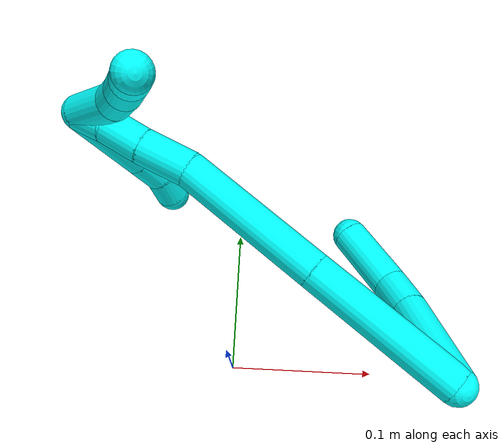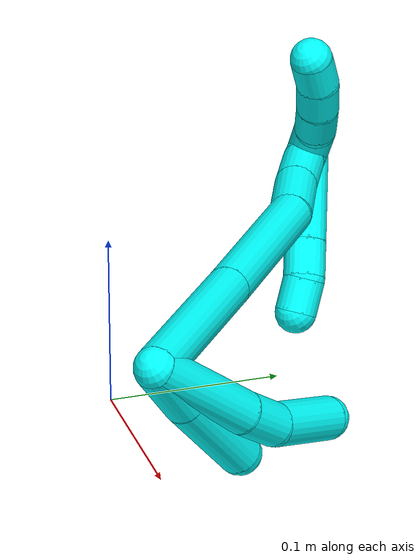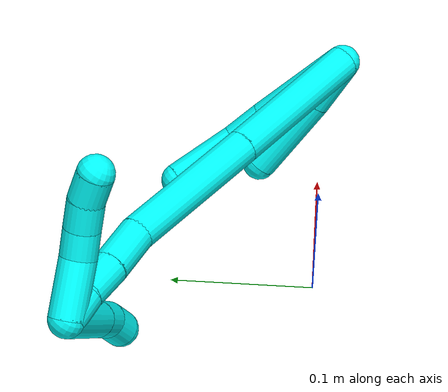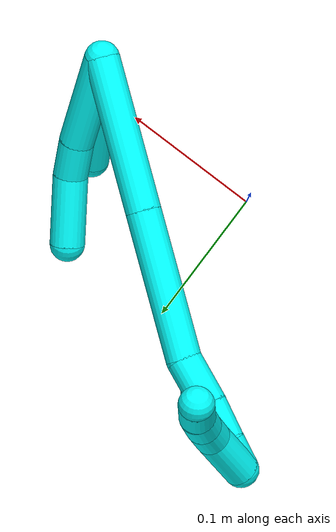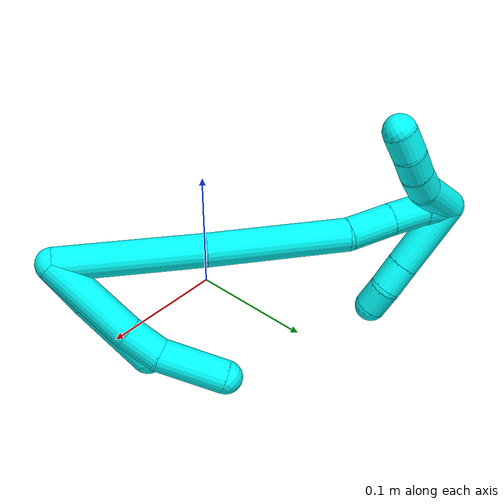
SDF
<sdf version="1.7">
 <world name="default">
  <model name="photoneo_s_sensor">
   <static>1</static>
   <pose>0 0 2 1.57079 1.57079 3.14159</pose>
   <link name="link">
    <inertial><mass>0.1</mass></inertial>
    <sensor name="sensor" type="depth">
     <update_rate>30</update_rate>
     <camera>
      <horizontal_fov>1.22</horizontal_fov>
      <image><width>1920</width><height>1200</height><format>B8G8R8</format></image>
      <clip><near>0.1</near><far>4</far></clip>
      <depth_camera><output>points</output></depth_camera>
     </camera>
     <plugin name="camera_plugin" filename="libgazebo_ros_depth_camera.so">
      <baseline>0.2</baseline>
      <alwaysOn>1</alwaysOn>
      <updateRate>0.0</updateRate>
      <cameraName>camera_ir</cameraName>
      <imageTopicName>/camera/color/image_raw</imageTopicName>
      <cameraInfoTopicName>/camera/color/camera_info</cameraInfoTopicName>
      <depthImageTopicName>/camera/depth/image_raw</depthImageTopicName>
      <depthImageCameraInfoTopicName>/camera/depth/camera_info</depthImageCameraInfoTopicName>
      <pointCloudTopicName>/camera/depth/points</pointCloudTopicName>
      <frameName>fr_optical</frameName>
      <pointCloudCutoff>0.1</pointCloudCutoff>
      <pointCloudCutoffMax>2.0</pointCloudCutoffMax>
      <distortionK1>0</distortionK1>
      <distortionK2>0</distortionK2>
      <distortionK3>0</distortionK3>
      <distortionT1>0</distortionT1>
      <distortionT2>0</distortionT2>
      <CxPrime>0</CxPrime>
      <Cx>0</Cx>
      <Cy>0</Cy>
      <focalLength>0</focalLength>
      <hackBaseline>0</hackBaseline>
     </plugin>
    </sensor>
   </link>
  </model>
  <model name="bin">
   <static>1</static>
   <link name="bottom">
    <collision name="collision-bottom">
     <pose>0 0 -0.01 0 -0 0</pose>
     <geometry><box><size>0.8 0.6 0.02</size></box></geometry>
     <surface>
      <friction><ode><mu>100</mu><mu2>100</mu2></ode></friction>
      <contact><collide_bitmask>65535</collide_bitmask></contact>
     </surface>
    </collision>
   </link>
   <link name="west_wall">
    <collision name="collision-west_wall">
     <pose>-0.41 0 0.1 0 -0 0</pose>
     <geometry><box><size>0.02 0.6 0.2</size></box></geometry>
     <surface>
      <friction><ode><mu>100</mu><mu2>100</mu2></ode></friction>
      <contact><collide_bitmask>65535</collide_bitmask></contact>
     </surface>
    </collision>
   </link>
   <link name="east_wall">
    <collision name="collision-east_wall">
     <pose>0.41 0 0.1 0 -0 0</pose>
     <geometry><box><size>0.02 0.6 0.2</size></box></geometry>
     <surface>
      <friction><ode><mu>100</mu><mu2>100</mu2></ode></friction>
      <contact><collide_bitmask>65535</collide_bitmask></contact>
     </surface>
    </collision>
   </link>
   <link name="south_wall">
    <collision name="collision-south_wall">
     <pose>0 -0.31 0.1 0 -0 0</pose>
     <geometry><box><size>0.8 0.02 0.2</size></box></geometry>
     <surface>
      <friction><ode><mu>100</mu><mu2>100</mu2></ode></friction>
      <contact><collide_bitmask>65535</collide_bitmask></contact>
     </surface>
    </collision>
   </link>
   <link name="north_wall">
    <collision name="collision-north_wall">
     <pose>0 0.31 0.1 0 -0 0</pose>
     <geometry><box><size>0.8 0.02 0.2</size></box></geometry>
     <surface>
      <friction><ode><mu>100</mu><mu2>100</mu2></ode></friction>
      <contact><collide_bitmask>65535</collide_bitmask></contact>
     </surface>
    </collision>
   </link>
  </model>
  <model name="3">
   <static>0</static>
   <link name="3">
    <collision name="collision-cylinder-e_1_2_8">
     <pose>-0.009427 -0.004873 0.034077 0.14205 -0.267304 -0.019131</pose>
     <geometry><cylinder><radius>0.0125</radius><length>0.071383</length></cylinder></geometry>
     <surface>
      <friction><ode><mu>1.16</mu><mu2>1.16</mu2><slip1>0</slip1><slip2>0</slip2></ode></friction>
      <contact><ode><kp>1e+06</kp><kd>1</kd><max_vel>0</max_vel><min_depth>0.001</min_depth></ode></contact>
     </surface>
    </collision>
    <visual name="visual-cylinder-e_1_2_8">
     <pose>-0.009427 -0.004873 0.034077 0.14205 -0.267304 -0.019131</pose>
     <geometry><cylinder><radius>0.0125</radius><length>0.071383</length></cylinder></geometry>
     <material><ambient>0.003922 1 0.996078 1</ambient></material>
    </visual>
    <collision name="collision-cylinder-e_2_8_9">
     <pose>-0.023315 -0.010203 0.081361 0.034483 -0.325508 -0.005663</pose>
     <geometry><cylinder><radius>0.0125</radius><length>0.027894</length></cylinder></geometry>
     <surface>
      <friction><ode><mu>1.16</mu><mu2>1.16</mu2><slip1>0</slip1><slip2>0</slip2></ode></friction>
      <contact><ode><kp>1e+06</kp><kd>1</kd><max_vel>0</max_vel><min_depth>0.001</min_depth></ode></contact>
     </surface>
    </collision>
    <visual name="visual-cylinder-e_2_8_9">
     <pose>-0.023315 -0.010203 0.081361 0.034483 -0.325508 -0.005663</pose>
     <geometry><cylinder><radius>0.0125</radius><length>0.027894</length></cylinder></geometry>
     <material><ambient>0.003922 1 0.996078 1</ambient></material>
    </visual>
    <collision name="collision-cylinder-e_3_9_6">
     <pose>-0.041649 -0.007168 0.115509 -0.165145 -0.578832 0.049279</pose>
     <geometry><cylinder><radius>0.0125</radius><length>0.050723</length></cylinder></geometry>
     <surface>
      <friction><ode><mu>1.16</mu><mu2>1.16</mu2><slip1>0</slip1><slip2>0</slip2></ode></friction>
      <contact><ode><kp>1e+06</kp><kd>1</kd><max_vel>0</max_vel><min_depth>0.001</min_depth></ode></contact>
     </surface>
    </collision>
    <visual name="visual-cylinder-e_3_9_6">
     <pose>-0.041649 -0.007168 0.115509 -0.165145 -0.578832 0.049279</pose>
     <geometry><cylinder><radius>0.0125</radius><length>0.050723</length></cylinder></geometry>
     <material><ambient>0.003922 1 0.996078 1</ambient></material>
    </visual>
    <collision name="collision-cylinder-e_1_2_10">
     <pose>2.4e-05 -8.8e-05 0.018456 0.004761 0.001289 3e-06</pose>
     <geometry><cylinder><radius>0.0125</radius><length>0.036913</length></cylinder></geometry>
     <surface>
      <friction><ode><mu>1.16</mu><mu2>1.16</mu2><slip1>0</slip1><slip2>0</slip2></ode></friction>
      <contact><ode><kp>1e+06</kp><kd>1</kd><max_vel>0</max_vel><min_depth>0.001</min_depth></ode></contact>
     </surface>
    </collision>
    <visual name="visual-cylinder-e_1_2_10">
     <pose>2.4e-05 -8.8e-05 0.018456 0.004761 0.001289 3e-06</pose>
     <geometry><cylinder><radius>0.0125</radius><length>0.036913</length></cylinder></geometry>
     <material><ambient>0.003922 1 0.996078 1</ambient></material>
    </visual>
    <collision name="collision-cylinder-e_2_10_5">
     <pose>-0.002486 -0.000543 0.068352 0.01168 -0.080417 -0.00047</pose>
     <geometry><cylinder><radius>0.0125</radius><length>0.063087</length></cylinder></geometry>
     <surface>
      <friction><ode><mu>1.16</mu><mu2>1.16</mu2><slip1>0</slip1><slip2>0</slip2></ode></friction>
      <contact><ode><kp>1e+06</kp><kd>1</kd><max_vel>0</max_vel><min_depth>0.001</min_depth></ode></contact>
     </surface>
    </collision>
    <visual name="visual-cylinder-e_2_10_5">
     <pose>-0.002486 -0.000543 0.068352 0.01168 -0.080417 -0.00047</pose>
     <geometry><cylinder><radius>0.0125</radius><length>0.063087</length></cylinder></geometry>
     <material><ambient>0.003922 1 0.996078 1</ambient></material>
    </visual>
    <collision name="collision-cylinder-e_1_2_11">
     <pose>-0.03594 0.025782 0.031885 -0.679946 -0.719677 0.264587</pose>
     <geometry><cylinder><radius>0.0125</radius><length>0.109051</length></cylinder></geometry>
     <surface>
      <friction><ode><mu>1.16</mu><mu2>1.16</mu2><slip1>0</slip1><slip2>0</slip2></ode></friction>
      <contact><ode><kp>1e+06</kp><kd>1</kd><max_vel>0</max_vel><min_depth>0.001</min_depth></ode></contact>
     </surface>
    </collision>
    <visual name="visual-cylinder-e_1_2_11">
     <pose>-0.03594 0.025782 0.031885 -0.679946 -0.719677 0.264587</pose>
     <geometry><cylinder><radius>0.0125</radius><length>0.109051</length></cylinder></geometry>
     <material><ambient>0.003922 1 0.996078 1</ambient></material>
    </visual>
    <collision name="collision-cylinder-e_2_11_12">
     <pose>-0.107335 0.076719 0.093819 -0.697001 -0.735431 0.278129</pose>
     <geometry><cylinder><radius>0.0125</radius><length>0.105693</length></cylinder></geometry>
     <surface>
      <friction><ode><mu>1.16</mu><mu2>1.16</mu2><slip1>0</slip1><slip2>0</slip2></ode></friction>
      <contact><ode><kp>1e+06</kp><kd>1</kd><max_vel>0</max_vel><min_depth>0.001</min_depth></ode></contact>
     </surface>
    </collision>
    <visual name="visual-cylinder-e_2_11_12">
     <pose>-0.107335 0.076719 0.093819 -0.697001 -0.735431 0.278129</pose>
     <geometry><cylinder><radius>0.0125</radius><length>0.105693</length></cylinder></geometry>
     <material><ambient>0.003922 1 0.996078 1</ambient></material>
    </visual>
    <collision name="collision-cylinder-e_3_12_13">
     <pose>-0.15331 0.113945 0.131477 -1.00828 -0.635263 0.358848</pose>
     <geometry><cylinder><radius>0.0125</radius><length>0.035456</length></cylinder></geometry>
     <surface>
      <friction><ode><mu>1.16</mu><mu2>1.16</mu2><slip1>0</slip1><slip2>0</slip2></ode></friction>
      <contact><ode><kp>1e+06</kp><kd>1</kd><max_vel>0</max_vel><min_depth>0.001</min_depth></ode></contact>
     </surface>
    </collision>
    <visual name="visual-cylinder-e_3_12_13">
     <pose>-0.15331 0.113945 0.131477 -1.00828 -0.635263 0.358848</pose>
     <geometry><cylinder><radius>0.0125</radius><length>0.035456</length></cylinder></geometry>
     <material><ambient>0.003922 1 0.996078 1</ambient></material>
    </visual>
    <collision name="collision-cylinder-e_4_13_14">
     <pose>-0.172792 0.134772 0.145131 -0.966724 -0.700032 0.37863</pose>
     <geometry><cylinder><radius>0.0125</radius><length>0.027823</length></cylinder></geometry>
     <surface>
      <friction><ode><mu>1.16</mu><mu2>1.16</mu2><slip1>0</slip1><slip2>0</slip2></ode></friction>
      <contact><ode><kp>1e+06</kp><kd>1</kd><max_vel>0</max_vel><min_depth>0.001</min_depth></ode></contact>
     </surface>
    </collision>
    <visual name="visual-cylinder-e_4_13_14">
     <pose>-0.172792 0.134772 0.145131 -0.966724 -0.700032 0.37863</pose>
     <geometry><cylinder><radius>0.0125</radius><length>0.027823</length></cylinder></geometry>
     <material><ambient>0.003922 1 0.996078 1</ambient></material>
    </visual>
    <collision name="collision-cylinder-e_5_14_1">
     <pose>-0.187124 0.150429 0.15783 -0.803386 -0.510533 0.220805</pose>
     <geometry><cylinder><radius>0.0125</radius><length>0.021977</length></cylinder></geometry>
     <surface>
      <friction><ode><mu>1.16</mu><mu2>1.16</mu2><slip1>0</slip1><slip2>0</slip2></ode></friction>
      <contact><ode><kp>1e+06</kp><kd>1</kd><max_vel>0</max_vel><min_depth>0.001</min_depth></ode></contact>
     </surface>
    </collision>
    <visual name="visual-cylinder-e_5_14_1">
     <pose>-0.187124 0.150429 0.15783 -0.803386 -0.510533 0.220805</pose>
     <geometry><cylinder><radius>0.0125</radius><length>0.021977</length></cylinder></geometry>
     <material><ambient>0.003922 1 0.996078 1</ambient></material>
    </visual>
    <collision name="collision-cylinder-e_1_1_15">
     <pose>-0.19478 0.14655 0.147894 2.56546 -0.115063 -0.383961</pose>
     <geometry><cylinder><radius>0.0125</radius><length>0.039836</length></cylinder></geometry>
     <surface>
      <friction><ode><mu>1.16</mu><mu2>1.16</mu2><slip1>0</slip1><slip2>0</slip2></ode></friction>
      <contact><ode><kp>1e+06</kp><kd>1</kd><max_vel>0</max_vel><min_depth>0.001</min_depth></ode></contact>
     </surface>
    </collision>
    <visual name="visual-cylinder-e_1_1_15">
     <pose>-0.19478 0.14655 0.147894 2.56546 -0.115063 -0.383961</pose>
     <geometry><cylinder><radius>0.0125</radius><length>0.039836</length></cylinder></geometry>
     <material><ambient>0.003922 1 0.996078 1</ambient></material>
    </visual>
    <collision name="collision-cylinder-e_2_15_16">
     <pose>-0.200164 0.132602 0.122311 2.8027 -0.314139 -1.49367</pose>
     <geometry><cylinder><radius>0.0125</radius><length>0.020046</length></cylinder></geometry>
     <surface>
      <friction><ode><mu>1.16</mu><mu2>1.16</mu2><slip1>0</slip1><slip2>0</slip2></ode></friction>
      <contact><ode><kp>1e+06</kp><kd>1</kd><max_vel>0</max_vel><min_depth>0.001</min_depth></ode></contact>
     </surface>
    </collision>
    <visual name="visual-cylinder-e_2_15_16">
     <pose>-0.200164 0.132602 0.122311 2.8027 -0.314139 -1.49367</pose>
     <geometry><cylinder><radius>0.0125</radius><length>0.020046</length></cylinder></geometry>
     <material><ambient>0.003922 1 0.996078 1</ambient></material>
    </visual>
    <collision name="collision-cylinder-e_3_16_17">
     <pose>-0.206755 0.127422 0.104132 2.92613 -0.355627 -2.0581</pose>
     <geometry><cylinder><radius>0.0125</radius><length>0.020069</length></cylinder></geometry>
     <surface>
      <friction><ode><mu>1.16</mu><mu2>1.16</mu2><slip1>0</slip1><slip2>0</slip2></ode></friction>
      <contact><ode><kp>1e+06</kp><kd>1</kd><max_vel>0</max_vel><min_depth>0.001</min_depth></ode></contact>
     </surface>
    </collision>
    <visual name="visual-cylinder-e_3_16_17">
     <pose>-0.206755 0.127422 0.104132 2.92613 -0.355627 -2.0581</pose>
     <geometry><cylinder><radius>0.0125</radius><length>0.020069</length></cylinder></geometry>
     <material><ambient>0.003922 1 0.996078 1</ambient></material>
    </visual>
    <collision name="collision-cylinder-e_4_17_4">
     <pose>-0.212695 0.124953 0.085232 3.09452 -0.246584 -2.76611</pose>
     <geometry><cylinder><radius>0.0125</radius><length>0.020049</length></cylinder></geometry>
     <surface>
      <friction><ode><mu>1.16</mu><mu2>1.16</mu2><slip1>0</slip1><slip2>0</slip2></ode></friction>
      <contact><ode><kp>1e+06</kp><kd>1</kd><max_vel>0</max_vel><min_depth>0.001</min_depth></ode></contact>
     </surface>
    </collision>
    <visual name="visual-cylinder-e_4_17_4">
     <pose>-0.212695 0.124953 0.085232 3.09452 -0.246584 -2.76611</pose>
     <geometry><cylinder><radius>0.0125</radius><length>0.020049</length></cylinder></geometry>
     <material><ambient>0.003922 1 0.996078 1</ambient></material>
    </visual>
    <collision name="collision-cylinder-e_1_1_18">
     <pose>-0.170034 0.142023 0.172819 1.07228 0.910881 0.56641</pose>
     <geometry><cylinder><radius>0.0125</radius><length>0.056855</length></cylinder></geometry>
     <surface>
      <friction><ode><mu>1.16</mu><mu2>1.16</mu2><slip1>0</slip1><slip2>0</slip2></ode></friction>
      <contact><ode><kp>1e+06</kp><kd>1</kd><max_vel>0</max_vel><min_depth>0.001</min_depth></ode></contact>
     </surface>
    </collision>
    <visual name="visual-cylinder-e_1_1_18">
     <pose>-0.170034 0.142023 0.172819 1.07228 0.910881 0.56641</pose>
     <geometry><cylinder><radius>0.0125</radius><length>0.056855</length></cylinder></geometry>
     <material><ambient>0.003922 1 0.996078 1</ambient></material>
    </visual>
    <collision name="collision-cylinder-e_2_18_19">
     <pose>-0.138709 0.120755 0.18458 1.04877 0.911082 0.552246</pose>
     <geometry><cylinder><radius>0.0125</radius><length>0.022441</length></cylinder></geometry>
     <surface>
      <friction><ode><mu>1.16</mu><mu2>1.16</mu2><slip1>0</slip1><slip2>0</slip2></ode></friction>
      <contact><ode><kp>1e+06</kp><kd>1</kd><max_vel>0</max_vel><min_depth>0.001</min_depth></ode></contact>
     </surface>
    </collision>
    <visual name="visual-cylinder-e_2_18_19">
     <pose>-0.138709 0.120755 0.18458 1.04877 0.911082 0.552246</pose>
     <geometry><cylinder><radius>0.0125</radius><length>0.022441</length></cylinder></geometry>
     <material><ambient>0.003922 1 0.996078 1</ambient></material>
    </visual>
    <collision name="collision-cylinder-e_3_19_3">
     <pose>-0.120689 0.112307 0.192154 0.540514 1.08499 0.330954</pose>
     <geometry><cylinder><radius>0.0125</radius><length>0.020704</length></cylinder></geometry>
     <surface>
      <friction><ode><mu>1.16</mu><mu2>1.16</mu2><slip1>0</slip1><slip2>0</slip2></ode></friction>
      <contact><ode><kp>1e+06</kp><kd>1</kd><max_vel>0</max_vel><min_depth>0.001</min_depth></ode></contact>
     </surface>
    </collision>
    <visual name="visual-cylinder-e_3_19_3">
     <pose>-0.120689 0.112307 0.192154 0.540514 1.08499 0.330954</pose>
     <geometry><cylinder><radius>0.0125</radius><length>0.020704</length></cylinder></geometry>
     <material><ambient>0.003922 1 0.996078 1</ambient></material>
    </visual>
    <collision name="collision-sphere-3">
     <pose>-0.111534 0.10982 0.196298 0 -0 0</pose>
     <geometry><sphere><radius>0.0125</radius></sphere></geometry>
     <surface>
      <friction><ode><mu>1.16</mu><mu2>1.16</mu2><slip1>0</slip1><slip2>0</slip2></ode></friction>
      <contact><ode><kp>1e+06</kp><kd>1</kd><max_vel>0</max_vel><min_depth>0.001</min_depth></ode></contact>
     </surface>
    </collision>
    <visual name="visual-sphere-3">
     <pose>-0.111534 0.10982 0.196298 0 -0 0</pose>
     <geometry><sphere><radius>0.0125</radius></sphere></geometry>
     <material><ambient>0.003922 1 0.996078 1</ambient></material>
    </visual>
    <collision name="collision-sphere-19">
     <pose>-0.129843 0.114794 0.188009 0 -0 0</pose>
     <geometry><sphere><radius>0.0125</radius></sphere></geometry>
     <surface>
      <friction><ode><mu>1.16</mu><mu2>1.16</mu2><slip1>0</slip1><slip2>0</slip2></ode></friction>
      <contact><ode><kp>1e+06</kp><kd>1</kd><max_vel>0</max_vel><min_depth>0.001</min_depth></ode></contact>
     </surface>
    </collision>
    <visual name="visual-sphere-19">
     <pose>-0.129843 0.114794 0.188009 0 -0 0</pose>
     <geometry><sphere><radius>0.0125</radius></sphere></geometry>
     <material><ambient>0.003922 1 0.996078 1</ambient></material>
    </visual>
    <collision name="collision-sphere-5">
     <pose>-0.00502 -0.00091 0.099791 0 -0 0</pose>
     <geometry><sphere><radius>0.0125</radius></sphere></geometry>
     <surface>
      <friction><ode><mu>1.16</mu><mu2>1.16</mu2><slip1>0</slip1><slip2>0</slip2></ode></friction>
      <contact><ode><kp>1e+06</kp><kd>1</kd><max_vel>0</max_vel><min_depth>0.001</min_depth></ode></contact>
     </surface>
    </collision>
    <visual name="visual-sphere-5">
     <pose>-0.00502 -0.00091 0.099791 0 -0 0</pose>
     <geometry><sphere><radius>0.0125</radius></sphere></geometry>
     <material><ambient>0.003922 1 0.996078 1</ambient></material>
    </visual>
    <collision name="collision-sphere-10">
     <pose>4.8e-05 -0.000176 0.036913 0 -0 0</pose>
     <geometry><sphere><radius>0.0125</radius></sphere></geometry>
     <surface>
      <friction><ode><mu>1.16</mu><mu2>1.16</mu2><slip1>0</slip1><slip2>0</slip2></ode></friction>
      <contact><ode><kp>1e+06</kp><kd>1</kd><max_vel>0</max_vel><min_depth>0.001</min_depth></ode></contact>
     </surface>
    </collision>
    <visual name="visual-sphere-10">
     <pose>4.8e-05 -0.000176 0.036913 0 -0 0</pose>
     <geometry><sphere><radius>0.0125</radius></sphere></geometry>
     <material><ambient>0.003922 1 0.996078 1</ambient></material>
    </visual>
    <collision name="collision-sphere-6">
     <pose>-0.055523 -0.003678 0.136451 0 -0 0</pose>
     <geometry><sphere><radius>0.0125</radius></sphere></geometry>
     <surface>
      <friction><ode><mu>1.16</mu><mu2>1.16</mu2><slip1>0</slip1><slip2>0</slip2></ode></friction>
      <contact><ode><kp>1e+06</kp><kd>1</kd><max_vel>0</max_vel><min_depth>0.001</min_depth></ode></contact>
     </surface>
    </collision>
    <visual name="visual-sphere-6">
     <pose>-0.055523 -0.003678 0.136451 0 -0 0</pose>
     <geometry><sphere><radius>0.0125</radius></sphere></geometry>
     <material><ambient>0.003922 1 0.996078 1</ambient></material>
    </visual>
    <collision name="collision-sphere-9">
     <pose>-0.027775 -0.010658 0.094568 0 -0 0</pose>
     <geometry><sphere><radius>0.0125</radius></sphere></geometry>
     <surface>
      <friction><ode><mu>1.16</mu><mu2>1.16</mu2><slip1>0</slip1><slip2>0</slip2></ode></friction>
      <contact><ode><kp>1e+06</kp><kd>1</kd><max_vel>0</max_vel><min_depth>0.001</min_depth></ode></contact>
     </surface>
    </collision>
    <visual name="visual-sphere-9">
     <pose>-0.027775 -0.010658 0.094568 0 -0 0</pose>
     <geometry><sphere><radius>0.0125</radius></sphere></geometry>
     <material><ambient>0.003922 1 0.996078 1</ambient></material>
    </visual>
    <collision name="collision-sphere-2">
     <geometry><sphere><radius>0.0125</radius></sphere></geometry>
     <surface>
      <friction><ode><mu>1.16</mu><mu2>1.16</mu2><slip1>0</slip1><slip2>0</slip2></ode></friction>
      <contact><ode><kp>1e+06</kp><kd>1</kd><max_vel>0</max_vel><min_depth>0.001</min_depth></ode></contact>
     </surface>
    </collision>
    <visual name="visual-sphere-2">
     <geometry><sphere><radius>0.0125</radius></sphere></geometry>
     <material><ambient>0.003922 1 0.996078 1</ambient></material>
    </visual>
    <collision name="collision-sphere-8">
     <pose>-0.018854 -0.009747 0.068154 0 -0 0</pose>
     <geometry><sphere><radius>0.0125</radius></sphere></geometry>
     <surface>
      <friction><ode><mu>1.16</mu><mu2>1.16</mu2><slip1>0</slip1><slip2>0</slip2></ode></friction>
      <contact><ode><kp>1e+06</kp><kd>1</kd><max_vel>0</max_vel><min_depth>0.001</min_depth></ode></contact>
     </surface>
    </collision>
    <visual name="visual-sphere-8">
     <pose>-0.018854 -0.009747 0.068154 0 -0 0</pose>
     <geometry><sphere><radius>0.0125</radius></sphere></geometry>
     <material><ambient>0.003922 1 0.996078 1</ambient></material>
    </visual>
    <collision name="collision-sphere-11">
     <pose>-0.07188 0.051563 0.063771 0 -0 0</pose>
     <geometry><sphere><radius>0.0125</radius></sphere></geometry>
     <surface>
      <friction><ode><mu>1.16</mu><mu2>1.16</mu2><slip1>0</slip1><slip2>0</slip2></ode></friction>
      <contact><ode><kp>1e+06</kp><kd>1</kd><max_vel>0</max_vel><min_depth>0.001</min_depth></ode></contact>
     </surface>
    </collision>
    <visual name="visual-sphere-11">
     <pose>-0.07188 0.051563 0.063771 0 -0 0</pose>
     <geometry><sphere><radius>0.0125</radius></sphere></geometry>
     <material><ambient>0.003922 1 0.996078 1</ambient></material>
    </visual>
    <collision name="collision-sphere-12">
     <pose>-0.14279 0.101874 0.123867 0 -0 0</pose>
     <geometry><sphere><radius>0.0125</radius></sphere></geometry>
     <surface>
      <friction><ode><mu>1.16</mu><mu2>1.16</mu2><slip1>0</slip1><slip2>0</slip2></ode></friction>
      <contact><ode><kp>1e+06</kp><kd>1</kd><max_vel>0</max_vel><min_depth>0.001</min_depth></ode></contact>
     </surface>
    </collision>
    <visual name="visual-sphere-12">
     <pose>-0.14279 0.101874 0.123867 0 -0 0</pose>
     <geometry><sphere><radius>0.0125</radius></sphere></geometry>
     <material><ambient>0.003922 1 0.996078 1</ambient></material>
    </visual>
    <collision name="collision-sphere-13">
     <pose>-0.163829 0.126015 0.139087 0 -0 0</pose>
     <geometry><sphere><radius>0.0125</radius></sphere></geometry>
     <surface>
      <friction><ode><mu>1.16</mu><mu2>1.16</mu2><slip1>0</slip1><slip2>0</slip2></ode></friction>
      <contact><ode><kp>1e+06</kp><kd>1</kd><max_vel>0</max_vel><min_depth>0.001</min_depth></ode></contact>
     </surface>
    </collision>
    <visual name="visual-sphere-13">
     <pose>-0.163829 0.126015 0.139087 0 -0 0</pose>
     <geometry><sphere><radius>0.0125</radius></sphere></geometry>
     <material><ambient>0.003922 1 0.996078 1</ambient></material>
    </visual>
    <collision name="collision-sphere-14">
     <pose>-0.181754 0.143529 0.151174 0 -0 0</pose>
     <geometry><sphere><radius>0.0125</radius></sphere></geometry>
     <surface>
      <friction><ode><mu>1.16</mu><mu2>1.16</mu2><slip1>0</slip1><slip2>0</slip2></ode></friction>
      <contact><ode><kp>1e+06</kp><kd>1</kd><max_vel>0</max_vel><min_depth>0.001</min_depth></ode></contact>
     </surface>
    </collision>
    <visual name="visual-sphere-14">
     <pose>-0.181754 0.143529 0.151174 0 -0 0</pose>
     <geometry><sphere><radius>0.0125</radius></sphere></geometry>
     <material><ambient>0.003922 1 0.996078 1</ambient></material>
    </visual>
    <collision name="collision-sphere-1">
     <pose>-0.192493 0.157329 0.164486 0 -0 0</pose>
     <geometry><sphere><radius>0.0125</radius></sphere></geometry>
     <surface>
      <friction><ode><mu>1.16</mu><mu2>1.16</mu2><slip1>0</slip1><slip2>0</slip2></ode></friction>
      <contact><ode><kp>1e+06</kp><kd>1</kd><max_vel>0</max_vel><min_depth>0.001</min_depth></ode></contact>
     </surface>
    </collision>
    <visual name="visual-sphere-1">
     <pose>-0.192493 0.157329 0.164486 0 -0 0</pose>
     <geometry><sphere><radius>0.0125</radius></sphere></geometry>
     <material><ambient>0.003922 1 0.996078 1</ambient></material>
    </visual>
    <collision name="collision-sphere-18">
     <pose>-0.147575 0.126716 0.181151 0 -0 0</pose>
     <geometry><sphere><radius>0.0125</radius></sphere></geometry>
     <surface>
      <friction><ode><mu>1.16</mu><mu2>1.16</mu2><slip1>0</slip1><slip2>0</slip2></ode></friction>
      <contact><ode><kp>1e+06</kp><kd>1</kd><max_vel>0</max_vel><min_depth>0.001</min_depth></ode></contact>
     </surface>
    </collision>
    <visual name="visual-sphere-18">
     <pose>-0.147575 0.126716 0.181151 0 -0 0</pose>
     <geometry><sphere><radius>0.0125</radius></sphere></geometry>
     <material><ambient>0.003922 1 0.996078 1</ambient></material>
    </visual>
    <collision name="collision-sphere-15">
     <pose>-0.197067 0.135771 0.131302 0 -0 0</pose>
     <geometry><sphere><radius>0.0125</radius></sphere></geometry>
     <surface>
      <friction><ode><mu>1.16</mu><mu2>1.16</mu2><slip1>0</slip1><slip2>0</slip2></ode></friction>
      <contact><ode><kp>1e+06</kp><kd>1</kd><max_vel>0</max_vel><min_depth>0.001</min_depth></ode></contact>
     </surface>
    </collision>
    <visual name="visual-sphere-15">
     <pose>-0.197067 0.135771 0.131302 0 -0 0</pose>
     <geometry><sphere><radius>0.0125</radius></sphere></geometry>
     <material><ambient>0.003922 1 0.996078 1</ambient></material>
    </visual>
    <collision name="collision-sphere-16">
     <pose>-0.203261 0.129433 0.113321 0 -0 0</pose>
     <geometry><sphere><radius>0.0125</radius></sphere></geometry>
     <surface>
      <friction><ode><mu>1.16</mu><mu2>1.16</mu2><slip1>0</slip1><slip2>0</slip2></ode></friction>
      <contact><ode><kp>1e+06</kp><kd>1</kd><max_vel>0</max_vel><min_depth>0.001</min_depth></ode></contact>
     </surface>
    </collision>
    <visual name="visual-sphere-16">
     <pose>-0.203261 0.129433 0.113321 0 -0 0</pose>
     <geometry><sphere><radius>0.0125</radius></sphere></geometry>
     <material><ambient>0.003922 1 0.996078 1</ambient></material>
    </visual>
    <collision name="collision-sphere-17">
     <pose>-0.210249 0.12541 0.094942 0 -0 0</pose>
     <geometry><sphere><radius>0.0125</radius></sphere></geometry>
     <surface>
      <friction><ode><mu>1.16</mu><mu2>1.16</mu2><slip1>0</slip1><slip2>0</slip2></ode></friction>
      <contact><ode><kp>1e+06</kp><kd>1</kd><max_vel>0</max_vel><min_depth>0.001</min_depth></ode></contact>
     </surface>
    </collision>
    <visual name="visual-sphere-17">
     <pose>-0.210249 0.12541 0.094942 0 -0 0</pose>
     <geometry><sphere><radius>0.0125</radius></sphere></geometry>
     <material><ambient>0.003922 1 0.996078 1</ambient></material>
    </visual>
    <collision name="collision-sphere-4">
     <pose>-0.215142 0.124495 0.075522 0 -0 0</pose>
     <geometry><sphere><radius>0.0125</radius></sphere></geometry>
     <surface>
      <friction><ode><mu>1.16</mu><mu2>1.16</mu2><slip1>0</slip1><slip2>0</slip2></ode></friction>
      <contact><ode><kp>1e+06</kp><kd>1</kd><max_vel>0</max_vel><min_depth>0.001</min_depth></ode></contact>
     </surface>
    </collision>
    <visual name="visual-sphere-4">
     <pose>-0.215142 0.124495 0.075522 0 -0 0</pose>
     <geometry><sphere><radius>0.0125</radius></sphere></geometry>
     <material><ambient>0.003922 1 0.996078 1</ambient></material>
    </visual>
    <inertial>
     <pose>-0.091568 0.063534 0.094938 0 -0 0</pose>
     <mass>0.75</mass>
     <inertia><ixx>0.000283</ixx><ixy>0</ixy><ixz>0</ixz><iyy>0.000334</iyy><iyz>0</iyz><izz>9e-05</izz></inertia>
    </inertial>
   </link>
   <pose>0.137687 -0.01297 0.088469 3.01472 0.647351 -1.23326</pose>
  </model>
 </world>
</sdf>
